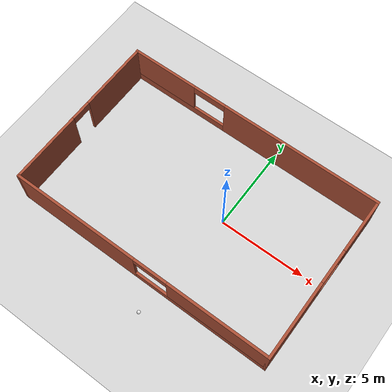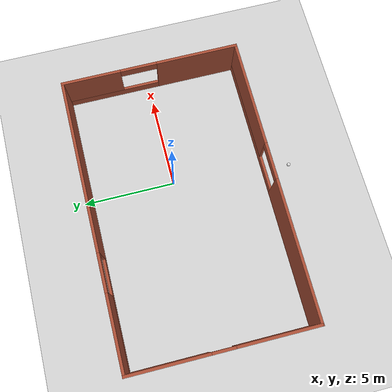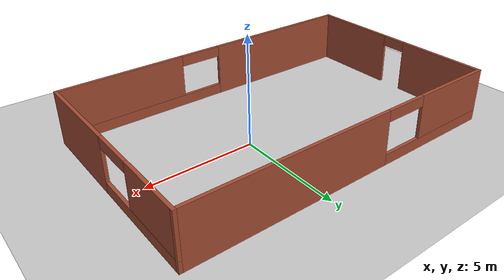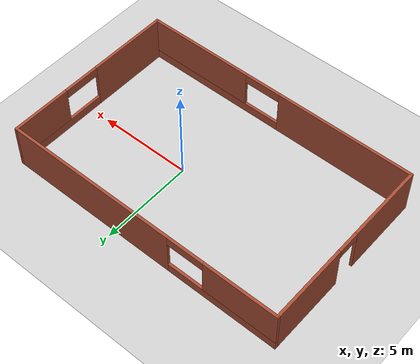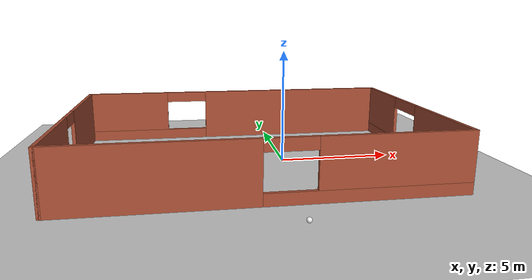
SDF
<sdf version="1.6">
 <world name="default">
  <model name="ground_plane">
   <static>1</static>
   <link name="link">
    <collision name="collision">
     <geometry><plane><normal>0 0 1</normal><size>100 100</size></plane></geometry>
     <surface><friction><ode><mu>100</mu><mu2>50</mu2></ode></friction></surface>
    </collision>
    <visual name="visual">
     <cast_shadows>0</cast_shadows>
     <geometry><plane><normal>0 0 1</normal><size>100 100</size></plane></geometry>
     <material>
      <script><uri>file://media/materials/scripts/gazebo.material</uri><name>Gazebo/Grey</name></script>
     </material>
    </visual>
   </link>
  </model>
  <model name="mybuilding">
   <pose>-1.56724 -0.21095 0 0 -0 0</pose>
   <link name="Wall_3">
    <pose>0 -4.8 0 0 -0 0</pose>
    <visual name="Wall_3_Visual_0">
     <pose>-3.97859 0 1.25 0 -0 0</pose>
     <geometry><box><size>7.54281 0.15 2.5</size></box></geometry>
     <material>
      <script><uri>file://media/materials/scripts/gazebo.material</uri><name>Gazebo/Bricks</name></script>
      <ambient>1 1 1 1</ambient>
     </material>
    </visual>
    <collision name="Wall_3_Collision_0">
     <geometry><box><size>7.54281 0.15 2.5</size></box></geometry>
     <pose>-3.97859 0 1.25 0 -0 0</pose>
    </collision>
    <visual name="Wall_3_Visual_1">
     <pose>3.77141 0 0.25 0 -0 0</pose>
     <geometry><box><size>7.95719 0.15 0.5</size></box></geometry>
     <material>
      <script><uri>file://media/materials/scripts/gazebo.material</uri><name>Gazebo/Bricks</name></script>
      <ambient>1 1 1 1</ambient>
     </material>
    </visual>
    <collision name="Wall_3_Collision_1">
     <geometry><box><size>7.95719 0.15 0.5</size></box></geometry>
     <pose>3.77141 0 0.25 0 -0 0</pose>
    </collision>
    <visual name="Wall_3_Visual_2">
     <pose>4.77141 0 1.5 0 -0 0</pose>
     <geometry><box><size>5.95719 0.15 2</size></box></geometry>
     <material>
      <script><uri>file://media/materials/scripts/gazebo.material</uri><name>Gazebo/Bricks</name></script>
      <ambient>1 1 1 1</ambient>
     </material>
    </visual>
    <collision name="Wall_3_Collision_2">
     <geometry><box><size>5.95719 0.15 2</size></box></geometry>
     <pose>4.77141 0 1.5 0 -0 0</pose>
    </collision>
    <visual name="Wall_3_Visual_3">
     <pose>0.792814 0 2.25 0 -0 0</pose>
     <geometry><box><size>2 0.15 0.5</size></box></geometry>
     <material>
      <script><uri>file://media/materials/scripts/gazebo.material</uri><name>Gazebo/Bricks</name></script>
      <ambient>1 1 1 1</ambient>
     </material>
    </visual>
    <collision name="Wall_3_Collision_3">
     <geometry><box><size>2 0.15 0.5</size></box></geometry>
     <pose>0.792814 0 2.25 0 -0 0</pose>
    </collision>
   </link>
   <link name="Wall_4">
    <pose>7.675 0 0 0 -0 1.5708</pose>
    <visual name="Wall_4_Visual_0">
     <pose>-2.62217 0 1.25 0 -0 0</pose>
     <geometry><box><size>4.50566 0.15 2.5</size></box></geometry>
     <material>
      <script><uri>file://media/materials/scripts/gazebo.material</uri><name>Gazebo/Bricks</name></script>
      <ambient>1 1 1 1</ambient>
     </material>
    </visual>
    <collision name="Wall_4_Collision_0">
     <geometry><box><size>4.50566 0.15 2.5</size></box></geometry>
     <pose>-2.62217 0 1.25 0 -0 0</pose>
    </collision>
    <visual name="Wall_4_Visual_1">
     <pose>2.25283 0 0.25 0 -0 0</pose>
     <geometry><box><size>5.24434 0.15 0.5</size></box></geometry>
     <material>
      <script><uri>file://media/materials/scripts/gazebo.material</uri><name>Gazebo/Bricks</name></script>
      <ambient>1 1 1 1</ambient>
     </material>
    </visual>
    <collision name="Wall_4_Collision_1">
     <geometry><box><size>5.24434 0.15 0.5</size></box></geometry>
     <pose>2.25283 0 0.25 0 -0 0</pose>
    </collision>
    <visual name="Wall_4_Visual_2">
     <pose>3.25283 0 1.5 0 -0 0</pose>
     <geometry><box><size>3.24434 0.15 2</size></box></geometry>
     <material>
      <script><uri>file://media/materials/scripts/gazebo.material</uri><name>Gazebo/Bricks</name></script>
      <ambient>1 1 1 1</ambient>
     </material>
    </visual>
    <collision name="Wall_4_Collision_2">
     <geometry><box><size>3.24434 0.15 2</size></box></geometry>
     <pose>3.25283 0 1.5 0 -0 0</pose>
    </collision>
    <visual name="Wall_4_Visual_3">
     <pose>0.630664 0 2.25 0 -0 0</pose>
     <geometry><box><size>2 0.15 0.5</size></box></geometry>
     <material>
      <script><uri>file://media/materials/scripts/gazebo.material</uri><name>Gazebo/Bricks</name></script>
      <ambient>1 1 1 1</ambient>
     </material>
    </visual>
    <collision name="Wall_4_Collision_3">
     <geometry><box><size>2 0.15 0.5</size></box></geometry>
     <pose>0.630664 0 2.25 0 -0 0</pose>
    </collision>
   </link>
   <link name="Wall_5">
    <pose>0 4.8 0 0 -0 3.14159</pose>
    <visual name="Wall_5_Visual_0">
     <pose>-3.01147 0 1.25 0 -0 0</pose>
     <geometry><box><size>9.47706 0.15 2.5</size></box></geometry>
     <material>
      <script><uri>file://media/materials/scripts/gazebo.material</uri><name>Gazebo/Bricks</name></script>
      <ambient>1 1 1 1</ambient>
     </material>
    </visual>
    <collision name="Wall_5_Collision_0">
     <geometry><box><size>9.47706 0.15 2.5</size></box></geometry>
     <pose>-3.01147 0 1.25 0 -0 0</pose>
    </collision>
    <visual name="Wall_5_Visual_1">
     <pose>4.73853 0 0.25 0 -0 0</pose>
     <geometry><box><size>6.02294 0.15 0.5</size></box></geometry>
     <material>
      <script><uri>file://media/materials/scripts/gazebo.material</uri><name>Gazebo/Bricks</name></script>
      <ambient>1 1 1 1</ambient>
     </material>
    </visual>
    <collision name="Wall_5_Collision_1">
     <geometry><box><size>6.02294 0.15 0.5</size></box></geometry>
     <pose>4.73853 0 0.25 0 -0 0</pose>
    </collision>
    <visual name="Wall_5_Visual_2">
     <pose>5.73853 0 1.5 0 -0 0</pose>
     <geometry><box><size>4.02294 0.15 2</size></box></geometry>
     <material>
      <script><uri>file://media/materials/scripts/gazebo.material</uri><name>Gazebo/Bricks</name></script>
      <ambient>1 1 1 1</ambient>
     </material>
    </visual>
    <collision name="Wall_5_Collision_2">
     <geometry><box><size>4.02294 0.15 2</size></box></geometry>
     <pose>5.73853 0 1.5 0 -0 0</pose>
    </collision>
    <visual name="Wall_5_Visual_3">
     <pose>2.72706 0 2.25 0 -0 0</pose>
     <geometry><box><size>2 0.15 0.5</size></box></geometry>
     <material>
      <script><uri>file://media/materials/scripts/gazebo.material</uri><name>Gazebo/Bricks</name></script>
      <ambient>1 1 1 1</ambient>
     </material>
    </visual>
    <collision name="Wall_5_Collision_3">
     <geometry><box><size>2 0.15 0.5</size></box></geometry>
     <pose>2.72706 0 2.25 0 -0 0</pose>
    </collision>
   </link>
   <link name="Wall_6">
    <pose>-7.675 0 0 0 0 -1.5708</pose>
    <visual name="Wall_6_Visual_0">
     <pose>-2.74107 0 1.25 0 -0 0</pose>
     <geometry><box><size>4.26786 0.15 2.5</size></box></geometry>
     <material>
      <script><uri>file://media/materials/scripts/gazebo.material</uri><name>Gazebo/Bricks</name></script>
      <ambient>1 1 1 1</ambient>
     </material>
    </visual>
    <collision name="Wall_6_Collision_0">
     <geometry><box><size>4.26786 0.15 2.5</size></box></geometry>
     <pose>-2.74107 0 1.25 0 -0 0</pose>
    </collision>
    <visual name="Wall_6_Visual_1">
     <pose>2.73393 0 1.25 0 -0 0</pose>
     <geometry><box><size>4.28214 0.15 2.5</size></box></geometry>
     <material>
      <script><uri>file://media/materials/scripts/gazebo.material</uri><name>Gazebo/Bricks</name></script>
      <ambient>1 1 1 1</ambient>
     </material>
    </visual>
    <collision name="Wall_6_Collision_1">
     <geometry><box><size>4.28214 0.15 2.5</size></box></geometry>
     <pose>2.73393 0 1.25 0 -0 0</pose>
    </collision>
    <visual name="Wall_6_Visual_2">
     <pose>-0.007144 0 2.25 0 -0 0</pose>
     <geometry><box><size>1.2 0.15 0.5</size></box></geometry>
     <material>
      <script><uri>file://media/materials/scripts/gazebo.material</uri><name>Gazebo/Bricks</name></script>
      <ambient>1 1 1 1</ambient>
     </material>
    </visual>
    <collision name="Wall_6_Collision_2">
     <geometry><box><size>1.2 0.15 0.5</size></box></geometry>
     <pose>-0.007144 0 2.25 0 -0 0</pose>
    </collision>
   </link>
   <static>1</static>
  </model>
  <model name="my_ball">
   <link name="link_0">
    <inertial>
     <mass>1</mass>
     <inertia><ixx>0.1</ixx><ixy>0</ixy><ixz>0</ixz><iyy>0.1</iyy><iyz>0</iyz><izz>0.1</izz></inertia>
    </inertial>
    <visual name="visual">
     <geometry><sphere><radius>0.1</radius></sphere></geometry>
     <material>
      <lighting>1</lighting>
      <script><uri>file://media/materials/scripts/gazebo.material</uri><name>Gazebo/White</name></script>
      <ambient>1 1 1 1</ambient>
      <diffuse>1 1 1 1</diffuse>
      <specular>1 1 1 1</specular>
      <emissive>1 1 1 1</emissive>
      <shader type="vertex"><normal_map>__default__</normal_map></shader>
     </material>
    </visual>
    <collision name="collision">
     <geometry><sphere><radius>0.1</radius></sphere></geometry>
     <surface>
      <friction>
       <ode><mu>1</mu><mu2>1</mu2><fdir1>0 0 0</fdir1><slip1>0</slip1><slip2>0</slip2></ode>
       <torsional>
        <coefficient>1</coefficient>
        <patch_radius>0</patch_radius>
        <surface_radius>0</surface_radius>
        <use_patch_radius>1</use_patch_radius>
        <ode><slip>0</slip></ode>
       </torsional>
      </friction>
      <bounce><restitution_coefficient>0</restitution_coefficient><threshold>1e+06</threshold></bounce>
      <contact>
       <collide_without_contact>0</collide_without_contact>
       <collide_without_contact_bitmask>1</collide_without_contact_bitmask>
       <collide_bitmask>1</collide_bitmask>
       <ode>
        <soft_cfm>0</soft_cfm>
        <soft_erp>0.2</soft_erp>
        <kp>1e+13</kp>
        <kd>1</kd>
        <max_vel>0.01</max_vel>
        <min_depth>0</min_depth>
       </ode>
       <bullet>
        <split_impulse>1</split_impulse>
        <split_impulse_penetration_threshold>-0.01</split_impulse_penetration_threshold>
        <soft_cfm>0</soft_cfm>
        <soft_erp>0.2</soft_erp>
        <kp>1e+13</kp>
        <kd>1</kd>
       </bullet>
      </contact>
     </surface>
    </collision>
   </link>
   <static>0</static>
   <pose>-0.495295 -6.48646 0.1 0 -0 0</pose>
  </model>
 </world>
</sdf>
